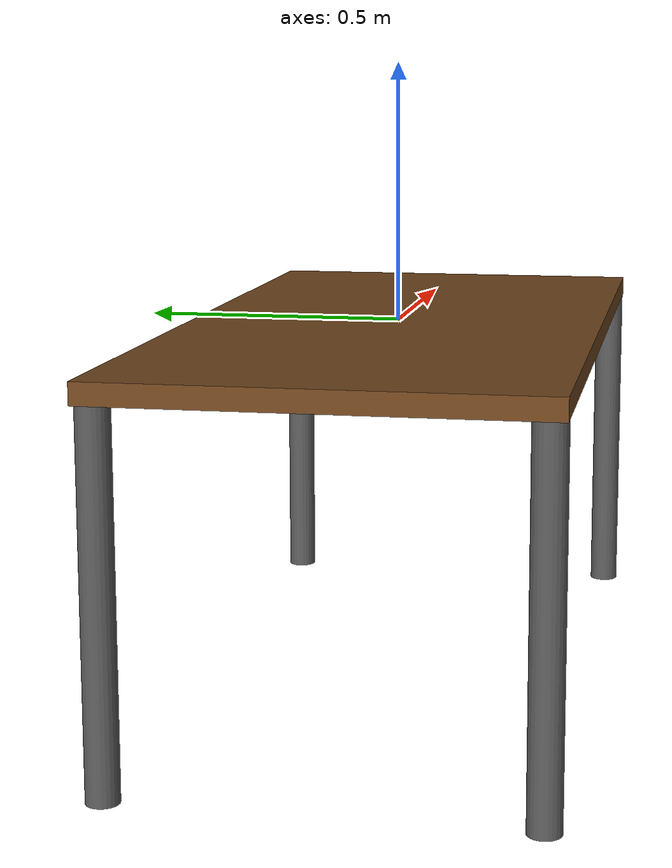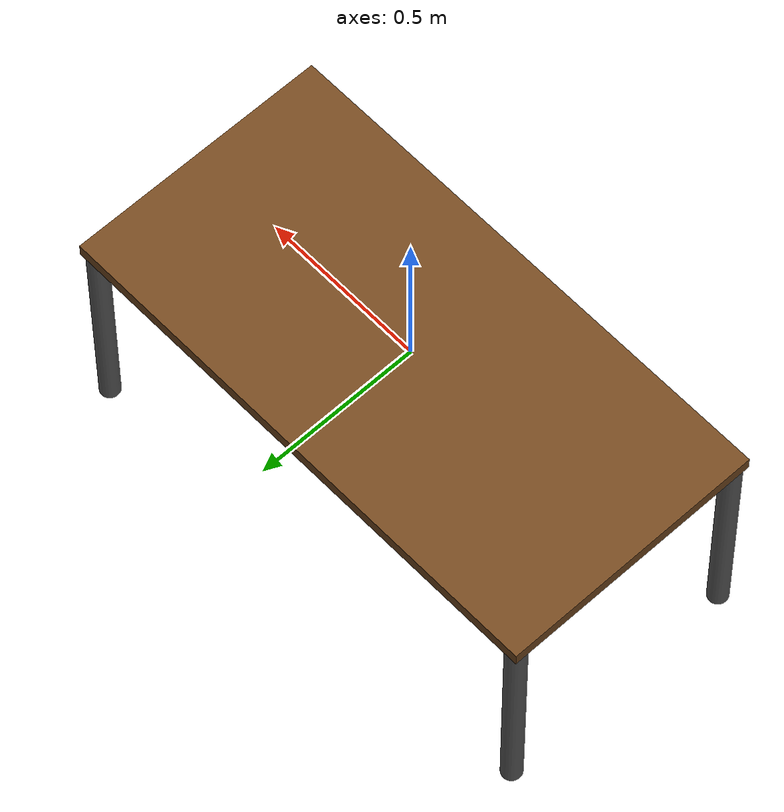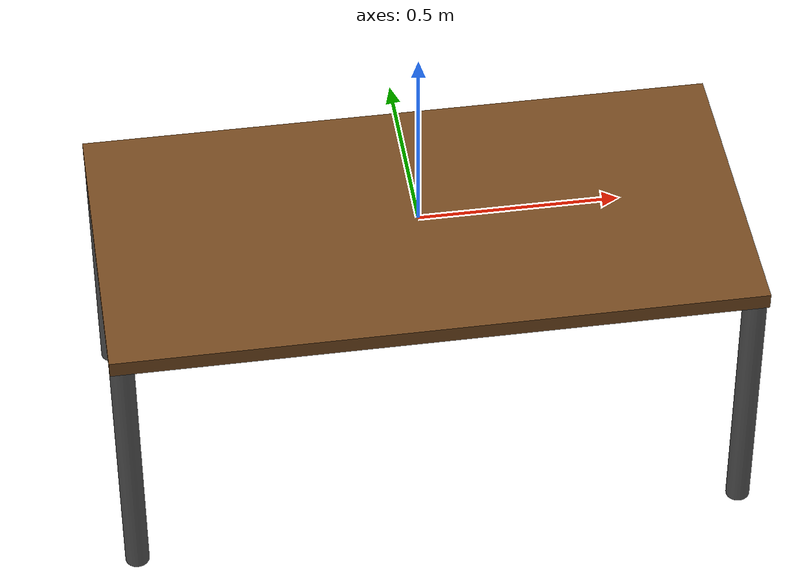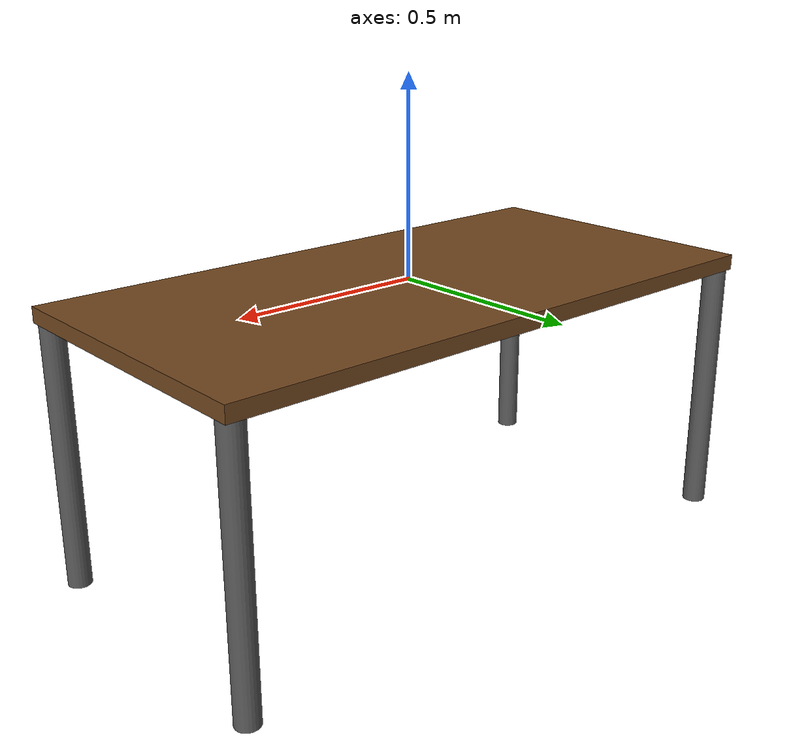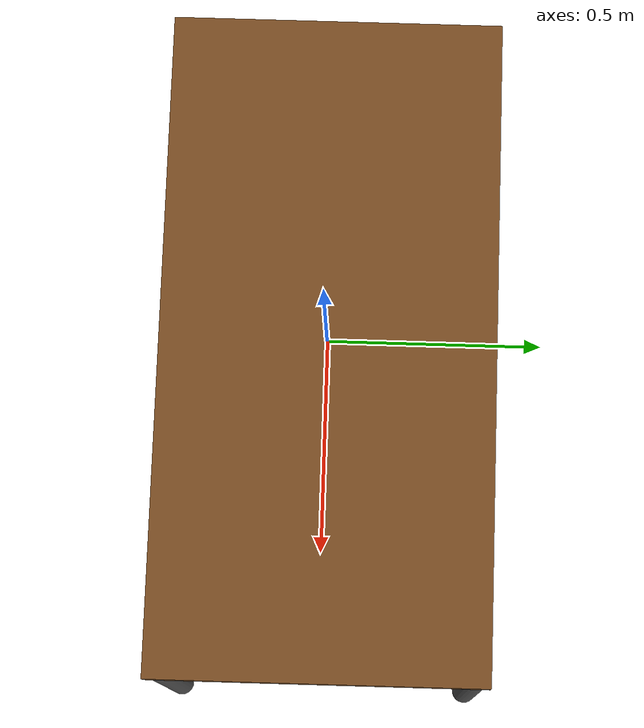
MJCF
<mujoco model="table_asset">
  <worldbody>
    <!-- Root body origin is the table top surface center. Place this asset at z=surface_z. -->
    <body name="root">
      <geom name="top" type="box" pos="0 0 -0.02" size="0.8 0.4 0.02"
            rgba="0.45 0.28 0.12 1" contype="1" conaffinity="1" condim="3"/>
      <!-- Table surface of 2cm + 70cm legs for a table height of 72cm -->
      <geom name="leg0" type="cylinder" pos="0.77 0.37 -0.37" size="0.03 0.35"
            rgba="0.35 0.35 0.35 1" contype="1" conaffinity="1" condim="3"/>
      <geom name="leg1" type="cylinder" pos="-0.77 0.37 -0.37" size="0.03 0.35"
            rgba="0.35 0.35 0.35 1" contype="1" conaffinity="1" condim="3"/>
      <geom name="leg2" type="cylinder" pos="0.77 -0.37 -0.37" size="0.03 0.35"
            rgba="0.35 0.35 0.35 1" contype="1" conaffinity="1" condim="3"/>
      <geom name="leg3" type="cylinder" pos="-0.77 -0.37 -0.37" size="0.03 0.35"
            rgba="0.35 0.35 0.35 1" contype="1" conaffinity="1" condim="3"/>
      <site name="table_top" pos="0 0 0" size="0.001 0.001 0.001" rgba="0 0 0 0"/>
    </body>
  </worldbody>
</mujoco>
